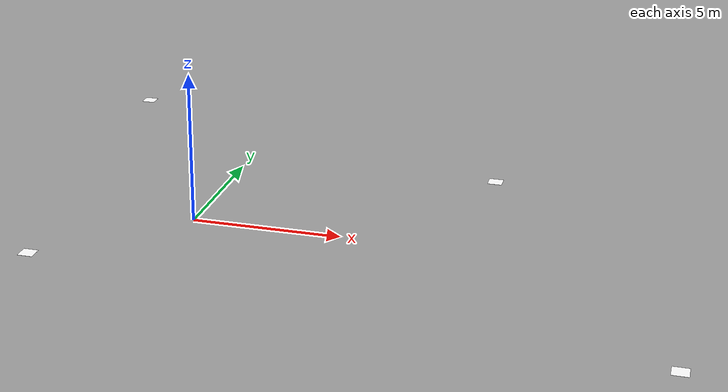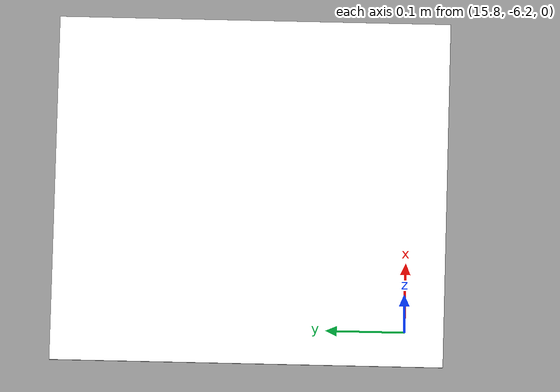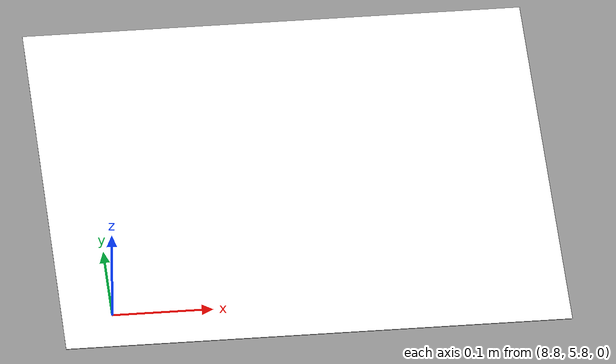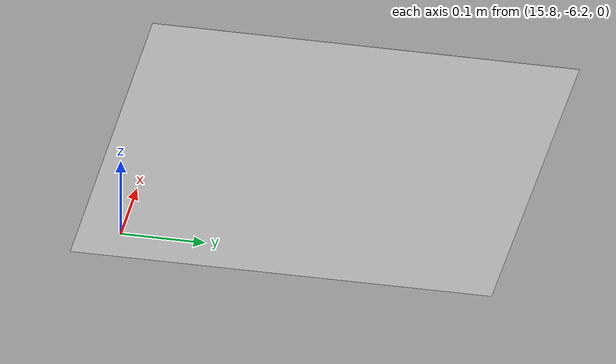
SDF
<?xml version="1.0" encoding="UTF-8"?>
<sdf version='1.9'>
  <model name='arucotag'>
    <static>true</static>

    <!-- TAG 0 -->
    <link name='tag_0'>
      <pose>-4 -4 0.1 0 0 0</pose>
      <visual name='tag_0_visual'>
        <geometry>
          <plane>
            <normal>0 0 1</normal>
            <size>0.5 0.5</size>
          </plane>
        </geometry>
        <material>
          <pbr>
            <metal>
              <albedo_map>model://arucotag/tag_0.png</albedo_map>
              <metalness>0.0</metalness>
              <roughness>1.0</roughness>
            </metal>
          </pbr>
          <ambient>1 1 1 1</ambient>
          <diffuse>1 1 1 1</diffuse>
          <specular>0 0 0 1</specular>
        </material>
      </visual>
    </link>

    <!-- TAG 1 -->
    <link name='tag_1'>
      <pose>16 -6 0.001 0 0 0</pose>
      <visual name='tag_1_visual'>
        <geometry>
          <plane>
            <normal>0 0 1</normal>
            <size>0.5 0.5</size>
          </plane>
        </geometry>
        <material>
          <pbr>
            <metal>
              <albedo_map>model://arucotag/tag_1.png</albedo_map>
              <metalness>0.0</metalness>
              <roughness>1.0</roughness>
            </metal>
          </pbr>
          <ambient>1 1 1 1</ambient>
          <diffuse>1 1 1 1</diffuse>
          <specular>0 0 0 1</specular>
        </material>
      </visual>
    </link>

    <!-- TAG 2 -->
    <link name='tag_2'>
      <pose>-6 11 0.001 0 0 0</pose>
      <visual name='tag_2_visual'>
        <geometry>
          <plane>
            <normal>0 0 1</normal>
            <size>0.5 0.5</size>
          </plane>
        </geometry>
        <material>
          <pbr>
            <metal>
              <albedo_map>model://arucotag/tag_2.png</albedo_map>
              <metalness>0.0</metalness>
              <roughness>1.0</roughness>
            </metal>
          </pbr>
          <ambient>1 1 1 1</ambient>
          <diffuse>1 1 1 1</diffuse>
          <specular>0 0 0 1</specular>
        </material>
      </visual>
    </link>

    <!-- TAG 3 -->
    <link name='tag_3'>
      <pose>9 6 0.001 0 0 0</pose>
      <visual name='tag_3_visual'>
        <geometry>
          <plane>
            <normal>0 0 1</normal>
            <size>0.5 0.5</size>
          </plane>
        </geometry>
        <material>
          <pbr>
            <metal>
              <albedo_map>model://arucotag/tag_3.png</albedo_map>
              <metalness>0.0</metalness>
              <roughness>1.0</roughness>
            </metal>
          </pbr>
          <ambient>1 1 1 1</ambient>
          <diffuse>1 1 1 1</diffuse>
          <specular>0 0 0 1</specular>
        </material>
      </visual>
    </link>

  </model>
</sdf>
